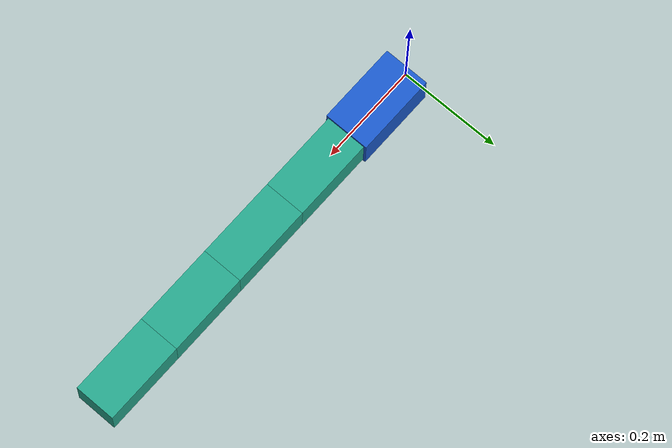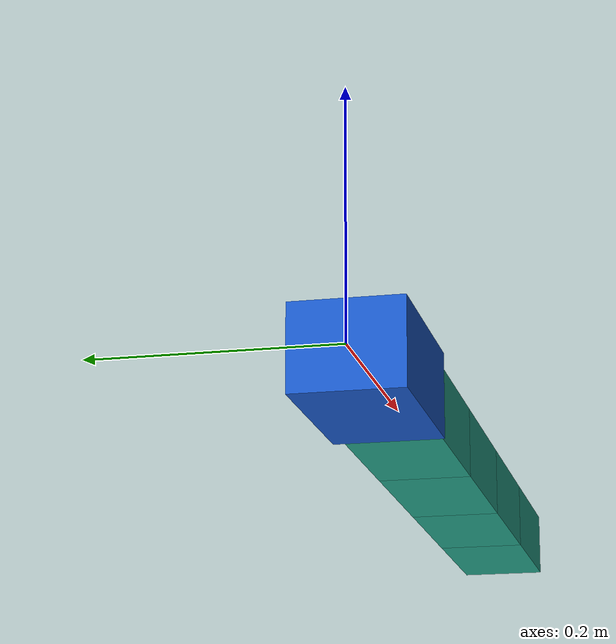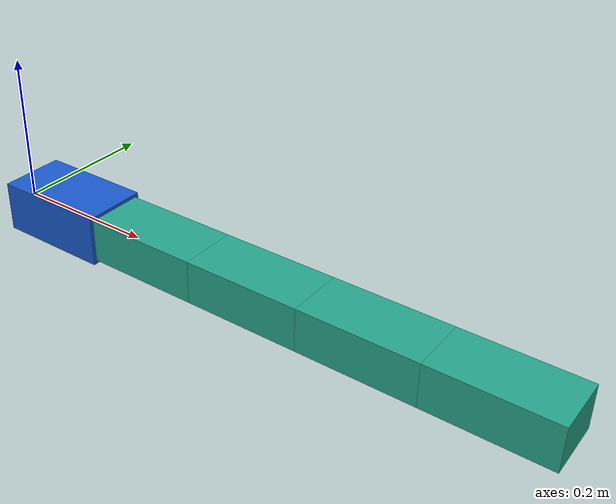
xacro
<?xml version="1.0"?>
<robot xmlns:xacro="http://www.ros.org/wiki/xacro"
       name="snake_robot">

  <xacro:include filename="$(find snake_description)/urdf/snake_links.xacro"/>
  <xacro:include filename="$(find snake_description)/urdf/snake_ros2_control.xacro"/>
<link name="base_link">
    <visual>
      <origin xyz="0.08 0 0"/>
      <geometry>
        <box size="0.16 0.09 0.07"/>
      </geometry>
      <material name="snake_head">
        <color rgba="0.1 0.35 0.8 1.0"/>
      </material>
    </visual>
  </link>

  <xacro:snake_module index="1" parent="base_link"/>
  <xacro:snake_module index="2" parent="module_1_link"/>
  <xacro:snake_module index="3" parent="module_2_link"/>
  <xacro:snake_module index="4" parent="module_3_link"/>

  <!-- Instantiate the ros2_control hardware and all eight joint interfaces. -->
  <xacro:snake_ros2_control/>

</robot>

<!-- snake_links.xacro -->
<robot xmlns:xacro="http://www.ros.org/wiki/xacro">
  <xacro:macro name="snake_module" params="index parent">
    <link name="module_${index}_yaw_link">
      <inertial>
        <mass value="0.05"/>
        <origin xyz="0 0 0"/>
        <inertia
          ixx="0.0001" ixy="0" ixz="0"
          iyy="0.0001" iyz="0"
          izz="0.0001"/>
      </inertial>
    </link>

    <joint name="joint_${index}_yaw" type="revolute">
      <parent link="${parent}"/>
      <child link="module_${index}_yaw_link"/>
      <origin xyz="0.16 0 0" rpy="0 0 0"/>
      <axis xyz="0 0 1"/>
      <limit lower="-1.0472" upper="1.0472" effort="20.0" velocity="2.0"/>
    </joint>

    <link name="module_${index}_link">
      <visual>
        <origin xyz="0.08 0 0"/>
        <geometry>
          <box size="0.16 0.08 0.06"/>
        </geometry>
        <material name="snake_green">
          <color rgba="0.15 0.65 0.55 1.0"/>
        </material>
      </visual>

      <collision>
        <origin xyz="0.08 0 0"/>
        <geometry>
          <box size="0.16 0.08 0.06"/>
        </geometry>
      </collision>

      <inertial>
        <origin xyz="0.08 0 0"/>
        <mass value="0.5"/>
        <inertia
          ixx="0.00042" ixy="0" ixz="0"
          iyy="0.00127" iyz="0"
          izz="0.00133"/>
      </inertial>
    </link>

    <joint name="joint_${index}_pitch" type="revolute">
      <parent link="module_${index}_yaw_link"/>
      <child link="module_${index}_link"/>
      <origin xyz="0 0 0" rpy="0 0 0"/>
      <axis xyz="0 1 0"/>
      <limit lower="-1.0472" upper="1.0472" effort="20.0" velocity="2.0"/>
    </joint>
  </xacro:macro>
</robot>
